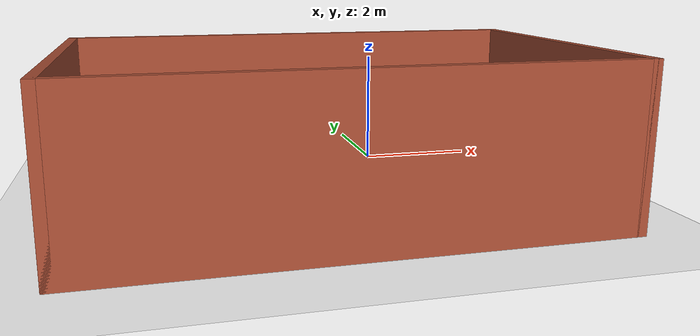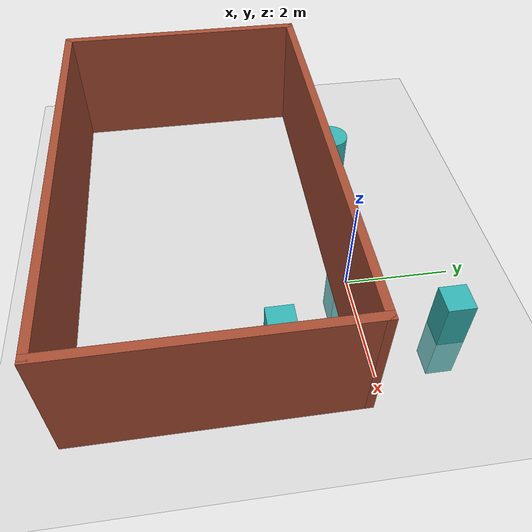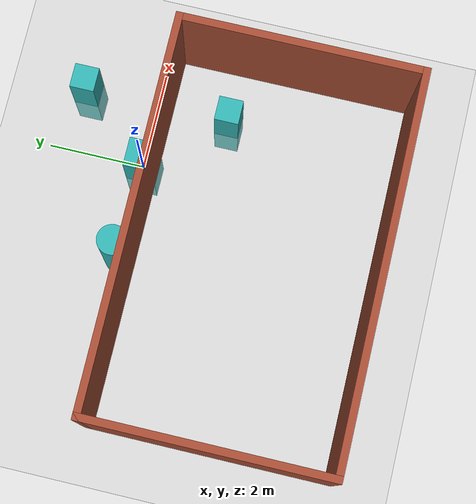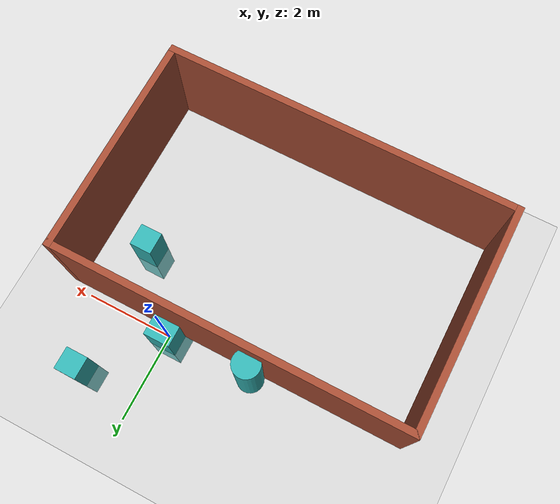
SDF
<sdf version="1.4">
 <world name="default">
  <include><uri>model://ground_plane</uri></include>
  <include><uri>model://sun</uri></include>
  <plugin name="ros_interface_plugin" filename="librotors_gazebo_ros_interface_plugin.so"/>
  <plugin name="ros_rl_interface_plugin" filename="librl_gazebo_interface_plugin.so"/>
  <spherical_coordinates>
   <surface_model>EARTH_WGS84</surface_model>
   <latitude_deg>47.3667</latitude_deg>
   <longitude_deg>8.5500</longitude_deg>
   <elevation>500.0</elevation>
   <heading_deg>0</heading_deg>
  </spherical_coordinates>
  <physics type="ode">
   <ode>
    <solver><type>quick</type><iters>1000</iters><sor>1.3</sor></solver>
    <constraints>
     <cfm>0</cfm>
     <erp>0.2</erp>
     <contact_max_correcting_vel>100</contact_max_correcting_vel>
     <contact_surface_layer>0.001</contact_surface_layer>
    </constraints>
   </ode>
   <max_step_size>0.01</max_step_size>
   <real_time_factor>1</real_time_factor>
   <real_time_update_rate>100</real_time_update_rate>
   <gravity>0 0 -9.8</gravity>
  </physics>
  <include>
   <pose>-2.0 0.0 0 0 0 0</pose>
   <uri>model://moving_obstacle_cylinder_thin</uri>
   <name>moving_obstacle_cylinder1</name>
  </include>
  <include><uri>model://obstacle_squared_box2</uri><name>moving_obstacle_squared1</name></include>
  <include>
   <pose>1.3 1.5 0 0 0 0</pose>
   <uri>model://obstacle_squared_box1</uri>
   <name>obstacle_squared2</name>
  </include>
  <include>
   <pose>1.3 -1.5 0 0 0 0</pose>
   <uri>model://obstacle_squared_box1</uri>
   <name>obstacle_squared3</name>
  </include>
  <include><uri>model://house_3c</uri></include>
 </world>
</sdf>

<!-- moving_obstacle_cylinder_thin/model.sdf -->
<sdf version='1.5'>
  <model name='moving_obstacle_cylinder_thin'>
    <link name='link'>
      <pose frame=''>0 0 1 0 -0 0</pose>
      <inertial>
        <mass>1</mass>
        <inertia>
          <ixx>0.145833</ixx>
          <ixy>0</ixy>
          <ixz>0</ixz>
          <iyy>0.145833</iyy>
          <iyz>0</iyz>
          <izz>0.125</izz>
        </inertia>
        <pose frame=''>0 0 0 0 -0 0</pose>
      </inertial>
      <self_collide>0</self_collide>
      <kinematic>0</kinematic>
      <gravity>0</gravity>
      <visual name='visual'>
        <geometry>
          <cylinder>
            <radius>0.3</radius>
            <length>2</length>
          </cylinder>
        </geometry>
        <material>
          <script>
            <name>Gazebo/Grey</name>
            <uri>file://media/materials/scripts/gazebo.material</uri>
          </script>
          <ambient>0.3 0.3 0.3 1</ambient>
          <diffuse>0.2 0.7 0.7 1</diffuse>
          <specular>0.01 0.01 0.01 1</specular>
          <emissive>0.2 0.7 0 1</emissive>
          <shader type='vertex'>
            <normal_map>__default__</normal_map>
          </shader>
        </material>
        <pose frame=''>0 0 0 0 -0 0</pose>
        <cast_shadows>1</cast_shadows>
        <transparency>0</transparency>
      </visual>
    </link>
    <static>0</static>
    <allow_auto_disable>1</allow_auto_disable>
    <plugin name="model_push" filename="libgazebo_moving_obstacle_sin.so">
        <robotNamespace>/</robotNamespace>
    </plugin>
  </model>
</sdf>

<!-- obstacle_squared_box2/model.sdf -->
<sdf version='1.5'>
  <model name='obstacle_squared_box2'>
    <link name='link'>
      <pose frame=''>0 0 0 -0 -0 -0</pose>
      <inertial>
        <mass>1</mass>
        <inertia>
          <ixx>0.166667</ixx>
          <ixy>0</ixy>
          <ixz>0</ixz>
          <iyy>0.166667</iyy>
          <iyz>0</iyz>
          <izz>0.166667</izz>
        </inertia>
        <pose frame=''>0 0 0 0 -0 0</pose>
      </inertial>
      <self_collide>0</self_collide>
      <kinematic>0</kinematic>
      <gravity>1</gravity>
      <visual name='visual'>
        <geometry>
          <box>
            <size>0.6 0.6 2</size>
          </box>
        </geometry>
        <material>
          <script>
            <name>Gazebo/Grey</name>
            <uri>file://media/materials/scripts/gazebo.material</uri>
          </script>
          <ambient>0.3 0.3 0.3 1</ambient>
          <diffuse>0.2 0.7 0.7 1</diffuse>
          <specular>0.01 0.01 0.01 1</specular>
          <emissive>0.2 0.7 0 1</emissive>
          <shader type='vertex'>
            <normal_map>__default__</normal_map>
          </shader>
        </material>
        <pose frame=''>0 0 0 0 -0 0</pose>
        <cast_shadows>1</cast_shadows>
        <transparency>0</transparency>
      </visual>
      <collision name='collision'>
        <laser_retro>0</laser_retro>
        <max_contacts>10</max_contacts>
        <pose frame=''>0 0 0 0 -0 0</pose>
        <geometry>
          <box>
            <size>0.6 0.6 2</size>
          </box>
        </geometry>
        <surface>
          <friction>
            <ode>
              <mu>1</mu>
              <mu2>1</mu2>
              <fdir1>0 0 0</fdir1>
              <slip1>0</slip1>
              <slip2>0</slip2>
            </ode>
          </friction>
          <bounce>
            <restitution_coefficient>0</restitution_coefficient>
            <threshold>1e+06</threshold>
          </bounce>
          <contact>
            <collide_without_contact>0</collide_without_contact>
            <collide_without_contact_bitmask>1</collide_without_contact_bitmask>
            <collide_bitmask>1</collide_bitmask>
            <ode>
              <soft_cfm>0</soft_cfm>
              <soft_erp>0.2</soft_erp>
              <kp>1e+13</kp>
              <kd>1</kd>
              <max_vel>0.01</max_vel>
              <min_depth>0</min_depth>
            </ode>
            <bullet>
              <split_impulse>1</split_impulse>
              <split_impulse_penetration_threshold>-0.01</split_impulse_penetration_threshold>
              <soft_cfm>0</soft_cfm>
              <soft_erp>0.2</soft_erp>
              <kp>1e+13</kp>
              <kd>1</kd>
            </bullet>
          </contact>
        </surface>
      </collision>
    </link>
    <static>0</static>
    <allow_auto_disable>1</allow_auto_disable>
  </model>
</sdf>

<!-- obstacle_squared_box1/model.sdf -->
<sdf version='1.5'>
  <model name='obstacle_squared_box1'>
    <link name='link'>
      <pose frame=''>0 0 0 -0 -0 -0</pose>
      <inertial>
        <mass>1</mass>
        <inertia>
          <ixx>0.166667</ixx>
          <ixy>0</ixy>
          <ixz>0</ixz>
          <iyy>0.166667</iyy>
          <iyz>0</iyz>
          <izz>0.166667</izz>
        </inertia>
        <pose frame=''>0 0 0 0 -0 0</pose>
      </inertial>
      <self_collide>0</self_collide>
      <kinematic>0</kinematic>
      <gravity>1</gravity>
      <visual name='visual'>
        <geometry>
          <box>
            <size>0.5 0.5 2</size>
          </box>
        </geometry>
        <material>
          <script>
            <name>Gazebo/Grey</name>
            <uri>file://media/materials/scripts/gazebo.material</uri>
          </script>
          <ambient>0.3 0.3 0.3 1</ambient>
          <diffuse>0.2 0.7 0.7 1</diffuse>
          <specular>0.01 0.01 0.01 1</specular>
          <emissive>0.2 0.7 0 1</emissive>
          <shader type='vertex'>
            <normal_map>__default__</normal_map>
          </shader>
        </material>
        <pose frame=''>0 0 0 0 -0 0</pose>
        <cast_shadows>1</cast_shadows>
        <transparency>0</transparency>
      </visual>
      <collision name='collision'>
        <laser_retro>0</laser_retro>
        <max_contacts>10</max_contacts>
        <pose frame=''>0 0 0 0 -0 0</pose>
        <geometry>
          <box>
            <size>0.5 0.5 2</size>
          </box>
        </geometry>
        <surface>
          <friction>
            <ode>
              <mu>1</mu>
              <mu2>1</mu2>
              <fdir1>0 0 0</fdir1>
              <slip1>0</slip1>
              <slip2>0</slip2>
            </ode>
          </friction>
          <bounce>
            <restitution_coefficient>0</restitution_coefficient>
            <threshold>1e+06</threshold>
          </bounce>
          <contact>
            <collide_without_contact>0</collide_without_contact>
            <collide_without_contact_bitmask>1</collide_without_contact_bitmask>
            <collide_bitmask>1</collide_bitmask>
            <ode>
              <soft_cfm>0</soft_cfm>
              <soft_erp>0.2</soft_erp>
              <kp>1e+13</kp>
              <kd>1</kd>
              <max_vel>0.01</max_vel>
              <min_depth>0</min_depth>
            </ode>
            <bullet>
              <split_impulse>1</split_impulse>
              <split_impulse_penetration_threshold>-0.01</split_impulse_penetration_threshold>
              <soft_cfm>0</soft_cfm>
              <soft_erp>0.2</soft_erp>
              <kp>1e+13</kp>
              <kd>1</kd>
            </bullet>
          </contact>
        </surface>
      </collision>
    </link>
    <static>0</static>
    <allow_auto_disable>1</allow_auto_disable>
  </model>
</sdf>

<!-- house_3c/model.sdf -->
<sdf version='1.5'>
  <model name='house_3c'>
    <pose frame=''>-1.46828 -2.66492 0 0 -0 0</pose>
    <link name='Wall_0'>
      <collision name='Wall_0_Collision'>
        <geometry>
          <box>
            <size>5 0.15 2.5</size>
          </box>
        </geometry>
        <pose frame=''>0 0 1.25 0 -0 0</pose>
      </collision>
      <visual name='Wall_0_Visual'>
        <pose frame=''>0 0 1.25 0 -0 0</pose>
        <geometry>
          <box>
            <size>5 0.15 2.5</size>
          </box>
        </geometry>
        <material>
          <script>
            <uri>file://media/materials/scripts/gazebo.material</uri>
            <name>Gazebo/Bricks</name>
          </script>
          <ambient>1 1 1 1</ambient>
        </material>
      </visual>
      <pose frame=''>-3.925 0 0 0 0 -1.5708</pose>
    </link>
    <link name='Wall_1'>
      <collision name='Wall_1_Collision'>
        <geometry>
          <box>
            <size>8 0.15 2.5</size>
          </box>
        </geometry>
        <pose frame=''>0 0 1.25 0 -0 0</pose>
      </collision>
      <visual name='Wall_1_Visual'>
        <pose frame=''>0 0 1.25 0 -0 0</pose>
        <geometry>
          <box>
            <size>8 0.15 2.5</size>
          </box>
        </geometry>
        <material>
          <script>
            <uri>file://media/materials/scripts/gazebo.material</uri>
            <name>Gazebo/Bricks</name>
          </script>
          <ambient>1 1 1 1</ambient>
        </material>
      </visual>
      <pose frame=''>0 -2.425 0 0 -0 0</pose>
    </link>
    <link name='Wall_2'>
      <collision name='Wall_2_Collision'>
        <geometry>
          <box>
            <size>5 0.15 2.5</size>
          </box>
        </geometry>
        <pose frame=''>0 0 1.25 0 -0 0</pose>
      </collision>
      <visual name='Wall_2_Visual'>
        <pose frame=''>0 0 1.25 0 -0 0</pose>
        <geometry>
          <box>
            <size>5 0.15 2.5</size>
          </box>
        </geometry>
        <material>
          <script>
            <uri>file://media/materials/scripts/gazebo.material</uri>
            <name>Gazebo/Bricks</name>
          </script>
          <ambient>1 1 1 1</ambient>
        </material>
      </visual>
      <pose frame=''>3.925 0 0 0 -0 1.5708</pose>
    </link>
    <link name='Wall_3'>
      <collision name='Wall_3_Collision'>
        <geometry>
          <box>
            <size>8 0.15 2.5</size>
          </box>
        </geometry>
        <pose frame=''>0 0 1.25 0 -0 0</pose>
      </collision>
      <visual name='Wall_3_Visual'>
        <pose frame=''>0 0 1.25 0 -0 0</pose>
        <geometry>
          <box>
            <size>8 0.15 2.5</size>
          </box>
        </geometry>
        <material>
          <script>
            <uri>file://media/materials/scripts/gazebo.material</uri>
            <name>Gazebo/Bricks</name>
          </script>
          <ambient>1 1 1 1</ambient>
        </material>
      </visual>
      <pose frame=''>0 2.425 0 0 -0 3.14159</pose>
    </link>
    <static>1</static>
  </model>
</sdf>
